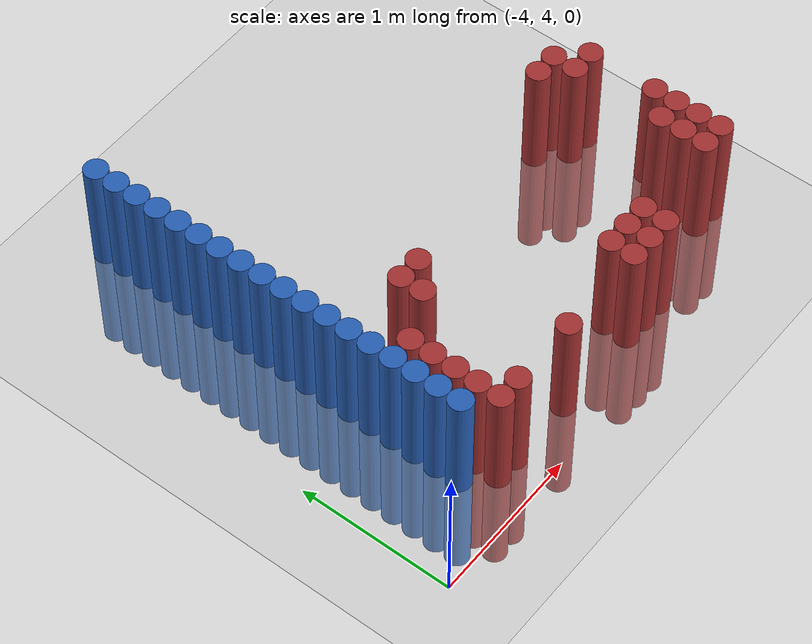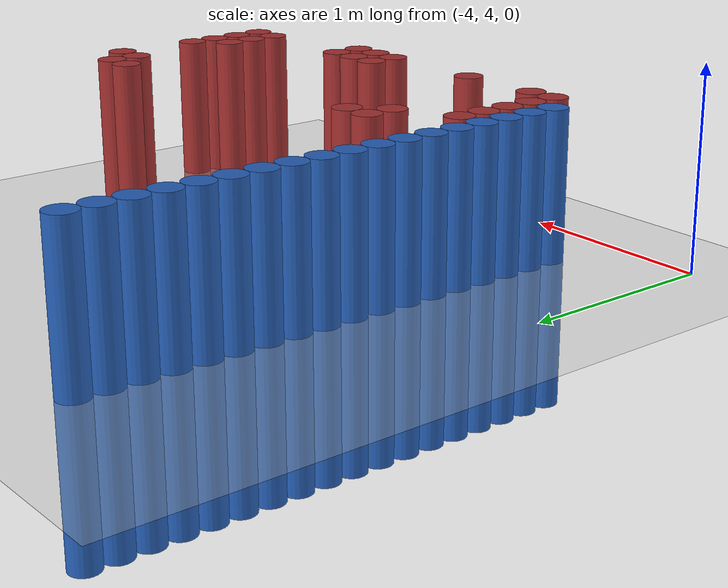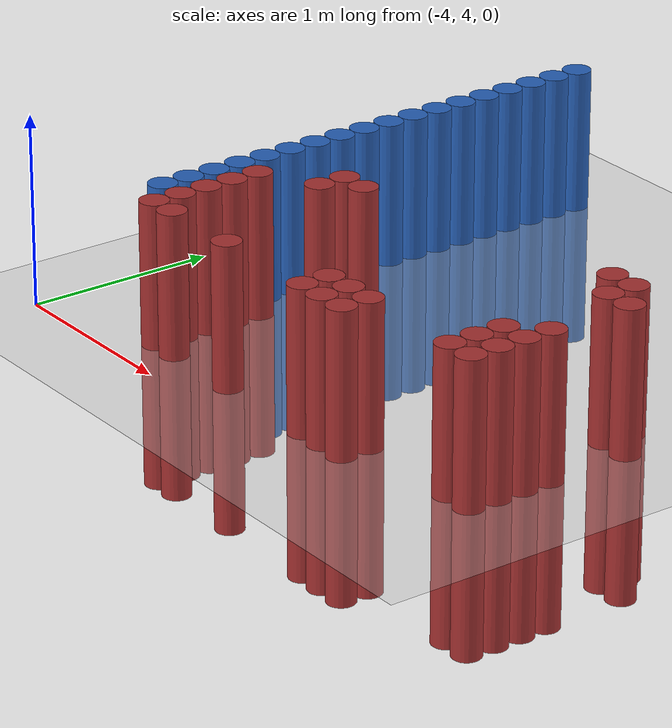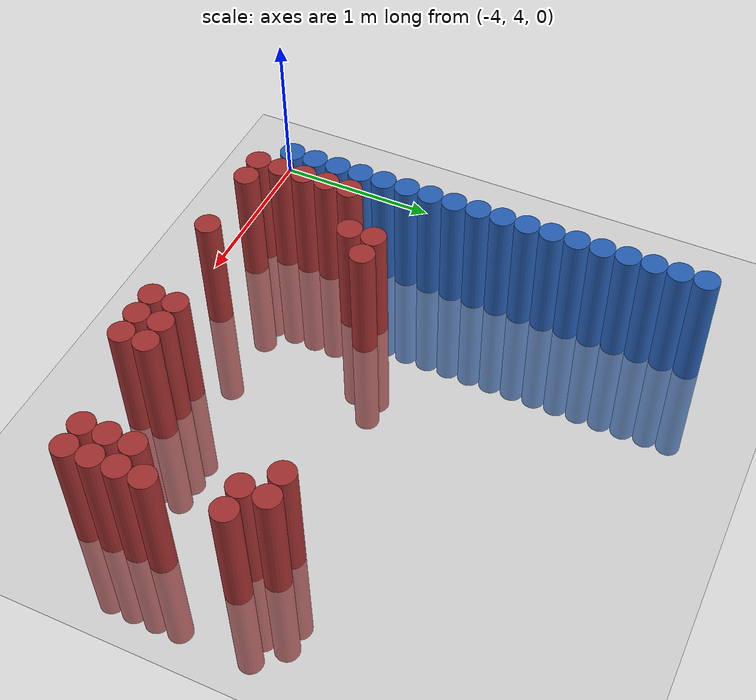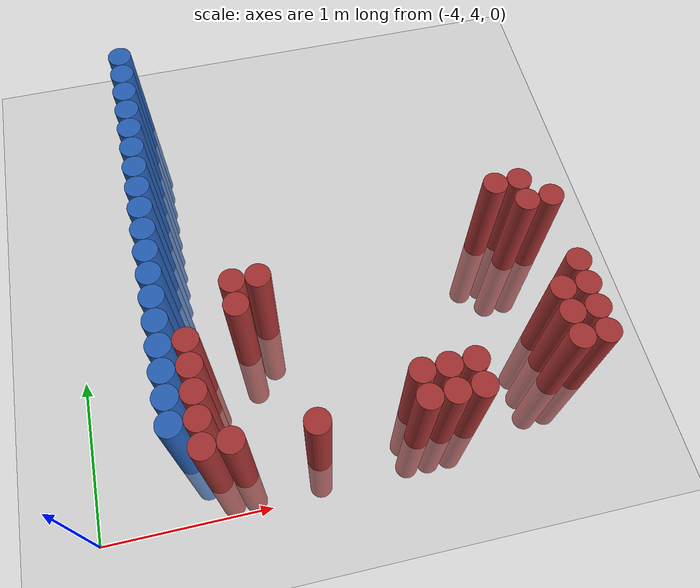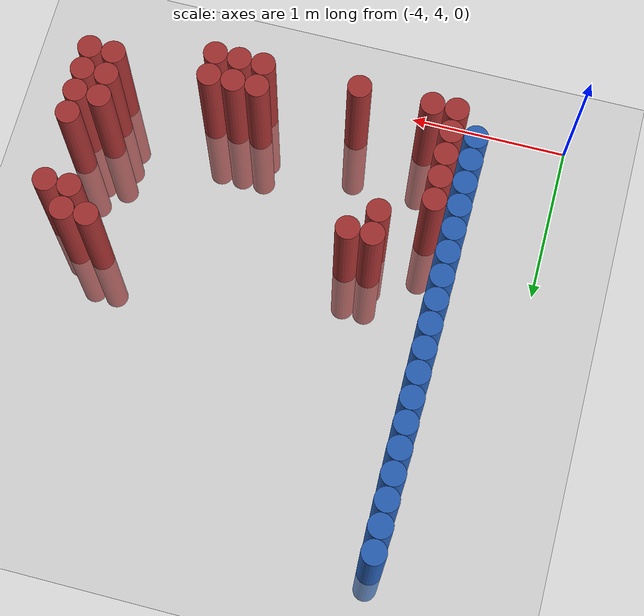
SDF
<sdf version="1.6">
 <world name="default">
  <model name="ground_plane">
   <static>1</static>
   <link name="link">
    <collision name="collision">
     <geometry><plane><normal>0 0 1</normal><size>100 100</size></plane></geometry>
     <surface><friction><ode><mu>100</mu><mu2>50</mu2></ode></friction></surface>
    </collision>
    <visual name="visual">
     <cast_shadows>0</cast_shadows>
     <geometry><plane><normal>0 0 1</normal><size>100 100</size></plane></geometry>
     <material>
      <script><uri>file://media/materials/scripts/gazebo.material</uri><name>Gazebo/Grey</name></script>
     </material>
    </visual>
   </link>
  </model>
  <model name="unit_cylinder_173">
   <static>1</static>
   <pose>-3.425000 4.375000 0.000000 0.000000 0.000000 0.000000</pose>
   <link name="link">
    <inertial>
     <mass>1</mass>
     <inertia><ixx>0.145833</ixx><ixy>0</ixy><ixz>0</ixz><iyy>0.145833</iyy><iyz>0</iyz><izz>0.125</izz></inertia>
    </inertial>
    <collision name="collision">
     <geometry><cylinder><radius>0.075000</radius><length>1.5</length></cylinder></geometry>
    </collision>
    <visual name="visual">
     <geometry><cylinder><radius>0.075000</radius><length>1.5</length></cylinder></geometry>
     <material>
      <ambient>0.152000 0.379000 0.720000 1</ambient>
      <diffuse>0.152000 0.379000 0.720000 1</diffuse>
     </material>
     <material>
      <script><name>Gazebo/Grey</name><uri>file://media/materials/scripts/gazebo.material</uri></script>
     </material>
    </visual>
   </link>
  </model>
  <model name="unit_cylinder_175">
   <static>1</static>
   <pose>-3.425000 4.525000 0.000000 0.000000 0.000000 0.000000</pose>
   <link name="link">
    <inertial>
     <mass>1</mass>
     <inertia><ixx>0.145833</ixx><ixy>0</ixy><ixz>0</ixz><iyy>0.145833</iyy><iyz>0</iyz><izz>0.125</izz></inertia>
    </inertial>
    <collision name="collision">
     <geometry><cylinder><radius>0.075000</radius><length>1.5</length></cylinder></geometry>
    </collision>
    <visual name="visual">
     <geometry><cylinder><radius>0.075000</radius><length>1.5</length></cylinder></geometry>
     <material>
      <ambient>0.152000 0.379000 0.720000 1</ambient>
      <diffuse>0.152000 0.379000 0.720000 1</diffuse>
     </material>
     <material>
      <script><name>Gazebo/Grey</name><uri>file://media/materials/scripts/gazebo.material</uri></script>
     </material>
    </visual>
   </link>
  </model>
  <model name="unit_cylinder_177">
   <static>1</static>
   <pose>-3.425000 4.675000 0.000000 0.000000 0.000000 0.000000</pose>
   <link name="link">
    <inertial>
     <mass>1</mass>
     <inertia><ixx>0.145833</ixx><ixy>0</ixy><ixz>0</ixz><iyy>0.145833</iyy><iyz>0</iyz><izz>0.125</izz></inertia>
    </inertial>
    <collision name="collision">
     <geometry><cylinder><radius>0.075000</radius><length>1.5</length></cylinder></geometry>
    </collision>
    <visual name="visual">
     <geometry><cylinder><radius>0.075000</radius><length>1.5</length></cylinder></geometry>
     <material>
      <ambient>0.152000 0.379000 0.720000 1</ambient>
      <diffuse>0.152000 0.379000 0.720000 1</diffuse>
     </material>
     <material>
      <script><name>Gazebo/Grey</name><uri>file://media/materials/scripts/gazebo.material</uri></script>
     </material>
    </visual>
   </link>
  </model>
  <model name="unit_cylinder_179">
   <static>1</static>
   <pose>-3.425000 4.825000 0.000000 0.000000 0.000000 0.000000</pose>
   <link name="link">
    <inertial>
     <mass>1</mass>
     <inertia><ixx>0.145833</ixx><ixy>0</ixy><ixz>0</ixz><iyy>0.145833</iyy><iyz>0</iyz><izz>0.125</izz></inertia>
    </inertial>
    <collision name="collision">
     <geometry><cylinder><radius>0.075000</radius><length>1.5</length></cylinder></geometry>
    </collision>
    <visual name="visual">
     <geometry><cylinder><radius>0.075000</radius><length>1.5</length></cylinder></geometry>
     <material>
      <ambient>0.152000 0.379000 0.720000 1</ambient>
      <diffuse>0.152000 0.379000 0.720000 1</diffuse>
     </material>
     <material>
      <script><name>Gazebo/Grey</name><uri>file://media/materials/scripts/gazebo.material</uri></script>
     </material>
    </visual>
   </link>
  </model>
  <model name="unit_cylinder_181">
   <static>1</static>
   <pose>-3.425000 4.975000 0.000000 0.000000 0.000000 0.000000</pose>
   <link name="link">
    <inertial>
     <mass>1</mass>
     <inertia><ixx>0.145833</ixx><ixy>0</ixy><ixz>0</ixz><iyy>0.145833</iyy><iyz>0</iyz><izz>0.125</izz></inertia>
    </inertial>
    <collision name="collision">
     <geometry><cylinder><radius>0.075000</radius><length>1.5</length></cylinder></geometry>
    </collision>
    <visual name="visual">
     <geometry><cylinder><radius>0.075000</radius><length>1.5</length></cylinder></geometry>
     <material>
      <ambient>0.152000 0.379000 0.720000 1</ambient>
      <diffuse>0.152000 0.379000 0.720000 1</diffuse>
     </material>
     <material>
      <script><name>Gazebo/Grey</name><uri>file://media/materials/scripts/gazebo.material</uri></script>
     </material>
    </visual>
   </link>
  </model>
  <model name="unit_cylinder_183">
   <static>1</static>
   <pose>-3.425000 5.125000 0.000000 0.000000 0.000000 0.000000</pose>
   <link name="link">
    <inertial>
     <mass>1</mass>
     <inertia><ixx>0.145833</ixx><ixy>0</ixy><ixz>0</ixz><iyy>0.145833</iyy><iyz>0</iyz><izz>0.125</izz></inertia>
    </inertial>
    <collision name="collision">
     <geometry><cylinder><radius>0.075000</radius><length>1.5</length></cylinder></geometry>
    </collision>
    <visual name="visual">
     <geometry><cylinder><radius>0.075000</radius><length>1.5</length></cylinder></geometry>
     <material>
      <ambient>0.152000 0.379000 0.720000 1</ambient>
      <diffuse>0.152000 0.379000 0.720000 1</diffuse>
     </material>
     <material>
      <script><name>Gazebo/Grey</name><uri>file://media/materials/scripts/gazebo.material</uri></script>
     </material>
    </visual>
   </link>
  </model>
  <model name="unit_cylinder_185">
   <static>1</static>
   <pose>-3.425000 5.275000 0.000000 0.000000 0.000000 0.000000</pose>
   <link name="link">
    <inertial>
     <mass>1</mass>
     <inertia><ixx>0.145833</ixx><ixy>0</ixy><ixz>0</ixz><iyy>0.145833</iyy><iyz>0</iyz><izz>0.125</izz></inertia>
    </inertial>
    <collision name="collision">
     <geometry><cylinder><radius>0.075000</radius><length>1.5</length></cylinder></geometry>
    </collision>
    <visual name="visual">
     <geometry><cylinder><radius>0.075000</radius><length>1.5</length></cylinder></geometry>
     <material>
      <ambient>0.152000 0.379000 0.720000 1</ambient>
      <diffuse>0.152000 0.379000 0.720000 1</diffuse>
     </material>
     <material>
      <script><name>Gazebo/Grey</name><uri>file://media/materials/scripts/gazebo.material</uri></script>
     </material>
    </visual>
   </link>
  </model>
  <model name="unit_cylinder_187">
   <static>1</static>
   <pose>-3.425000 5.425000 0.000000 0.000000 0.000000 0.000000</pose>
   <link name="link">
    <inertial>
     <mass>1</mass>
     <inertia><ixx>0.145833</ixx><ixy>0</ixy><ixz>0</ixz><iyy>0.145833</iyy><iyz>0</iyz><izz>0.125</izz></inertia>
    </inertial>
    <collision name="collision">
     <geometry><cylinder><radius>0.075000</radius><length>1.5</length></cylinder></geometry>
    </collision>
    <visual name="visual">
     <geometry><cylinder><radius>0.075000</radius><length>1.5</length></cylinder></geometry>
     <material>
      <ambient>0.152000 0.379000 0.720000 1</ambient>
      <diffuse>0.152000 0.379000 0.720000 1</diffuse>
     </material>
     <material>
      <script><name>Gazebo/Grey</name><uri>file://media/materials/scripts/gazebo.material</uri></script>
     </material>
    </visual>
   </link>
  </model>
  <model name="unit_cylinder_189">
   <static>1</static>
   <pose>-3.425000 5.575000 0.000000 0.000000 0.000000 0.000000</pose>
   <link name="link">
    <inertial>
     <mass>1</mass>
     <inertia><ixx>0.145833</ixx><ixy>0</ixy><ixz>0</ixz><iyy>0.145833</iyy><iyz>0</iyz><izz>0.125</izz></inertia>
    </inertial>
    <collision name="collision">
     <geometry><cylinder><radius>0.075000</radius><length>1.5</length></cylinder></geometry>
    </collision>
    <visual name="visual">
     <geometry><cylinder><radius>0.075000</radius><length>1.5</length></cylinder></geometry>
     <material>
      <ambient>0.152000 0.379000 0.720000 1</ambient>
      <diffuse>0.152000 0.379000 0.720000 1</diffuse>
     </material>
     <material>
      <script><name>Gazebo/Grey</name><uri>file://media/materials/scripts/gazebo.material</uri></script>
     </material>
    </visual>
   </link>
  </model>
  <model name="unit_cylinder_191">
   <static>1</static>
   <pose>-3.425000 5.725000 0.000000 0.000000 0.000000 0.000000</pose>
   <link name="link">
    <inertial>
     <mass>1</mass>
     <inertia><ixx>0.145833</ixx><ixy>0</ixy><ixz>0</ixz><iyy>0.145833</iyy><iyz>0</iyz><izz>0.125</izz></inertia>
    </inertial>
    <collision name="collision">
     <geometry><cylinder><radius>0.075000</radius><length>1.5</length></cylinder></geometry>
    </collision>
    <visual name="visual">
     <geometry><cylinder><radius>0.075000</radius><length>1.5</length></cylinder></geometry>
     <material>
      <ambient>0.152000 0.379000 0.720000 1</ambient>
      <diffuse>0.152000 0.379000 0.720000 1</diffuse>
     </material>
     <material>
      <script><name>Gazebo/Grey</name><uri>file://media/materials/scripts/gazebo.material</uri></script>
     </material>
    </visual>
   </link>
  </model>
  <model name="unit_cylinder_193">
   <static>1</static>
   <pose>-3.425000 5.875000 0.000000 0.000000 0.000000 0.000000</pose>
   <link name="link">
    <inertial>
     <mass>1</mass>
     <inertia><ixx>0.145833</ixx><ixy>0</ixy><ixz>0</ixz><iyy>0.145833</iyy><iyz>0</iyz><izz>0.125</izz></inertia>
    </inertial>
    <collision name="collision">
     <geometry><cylinder><radius>0.075000</radius><length>1.5</length></cylinder></geometry>
    </collision>
    <visual name="visual">
     <geometry><cylinder><radius>0.075000</radius><length>1.5</length></cylinder></geometry>
     <material>
      <ambient>0.152000 0.379000 0.720000 1</ambient>
      <diffuse>0.152000 0.379000 0.720000 1</diffuse>
     </material>
     <material>
      <script><name>Gazebo/Grey</name><uri>file://media/materials/scripts/gazebo.material</uri></script>
     </material>
    </visual>
   </link>
  </model>
  <model name="unit_cylinder_195">
   <static>1</static>
   <pose>-3.425000 6.025000 0.000000 0.000000 0.000000 0.000000</pose>
   <link name="link">
    <inertial>
     <mass>1</mass>
     <inertia><ixx>0.145833</ixx><ixy>0</ixy><ixz>0</ixz><iyy>0.145833</iyy><iyz>0</iyz><izz>0.125</izz></inertia>
    </inertial>
    <collision name="collision">
     <geometry><cylinder><radius>0.075000</radius><length>1.5</length></cylinder></geometry>
    </collision>
    <visual name="visual">
     <geometry><cylinder><radius>0.075000</radius><length>1.5</length></cylinder></geometry>
     <material>
      <ambient>0.152000 0.379000 0.720000 1</ambient>
      <diffuse>0.152000 0.379000 0.720000 1</diffuse>
     </material>
     <material>
      <script><name>Gazebo/Grey</name><uri>file://media/materials/scripts/gazebo.material</uri></script>
     </material>
    </visual>
   </link>
  </model>
  <model name="unit_cylinder_197">
   <static>1</static>
   <pose>-3.425000 6.175000 0.000000 0.000000 0.000000 0.000000</pose>
   <link name="link">
    <inertial>
     <mass>1</mass>
     <inertia><ixx>0.145833</ixx><ixy>0</ixy><ixz>0</ixz><iyy>0.145833</iyy><iyz>0</iyz><izz>0.125</izz></inertia>
    </inertial>
    <collision name="collision">
     <geometry><cylinder><radius>0.075000</radius><length>1.5</length></cylinder></geometry>
    </collision>
    <visual name="visual">
     <geometry><cylinder><radius>0.075000</radius><length>1.5</length></cylinder></geometry>
     <material>
      <ambient>0.152000 0.379000 0.720000 1</ambient>
      <diffuse>0.152000 0.379000 0.720000 1</diffuse>
     </material>
     <material>
      <script><name>Gazebo/Grey</name><uri>file://media/materials/scripts/gazebo.material</uri></script>
     </material>
    </visual>
   </link>
  </model>
  <model name="unit_cylinder_199">
   <static>1</static>
   <pose>-3.425000 6.325000 0.000000 0.000000 0.000000 0.000000</pose>
   <link name="link">
    <inertial>
     <mass>1</mass>
     <inertia><ixx>0.145833</ixx><ixy>0</ixy><ixz>0</ixz><iyy>0.145833</iyy><iyz>0</iyz><izz>0.125</izz></inertia>
    </inertial>
    <collision name="collision">
     <geometry><cylinder><radius>0.075000</radius><length>1.5</length></cylinder></geometry>
    </collision>
    <visual name="visual">
     <geometry><cylinder><radius>0.075000</radius><length>1.5</length></cylinder></geometry>
     <material>
      <ambient>0.152000 0.379000 0.720000 1</ambient>
      <diffuse>0.152000 0.379000 0.720000 1</diffuse>
     </material>
     <material>
      <script><name>Gazebo/Grey</name><uri>file://media/materials/scripts/gazebo.material</uri></script>
     </material>
    </visual>
   </link>
  </model>
  <model name="unit_cylinder_201">
   <static>1</static>
   <pose>-3.425000 6.475000 0.000000 0.000000 0.000000 0.000000</pose>
   <link name="link">
    <inertial>
     <mass>1</mass>
     <inertia><ixx>0.145833</ixx><ixy>0</ixy><ixz>0</ixz><iyy>0.145833</iyy><iyz>0</iyz><izz>0.125</izz></inertia>
    </inertial>
    <collision name="collision">
     <geometry><cylinder><radius>0.075000</radius><length>1.5</length></cylinder></geometry>
    </collision>
    <visual name="visual">
     <geometry><cylinder><radius>0.075000</radius><length>1.5</length></cylinder></geometry>
     <material>
      <ambient>0.152000 0.379000 0.720000 1</ambient>
      <diffuse>0.152000 0.379000 0.720000 1</diffuse>
     </material>
     <material>
      <script><name>Gazebo/Grey</name><uri>file://media/materials/scripts/gazebo.material</uri></script>
     </material>
    </visual>
   </link>
  </model>
  <model name="unit_cylinder_203">
   <static>1</static>
   <pose>-3.425000 6.625000 0.000000 0.000000 0.000000 0.000000</pose>
   <link name="link">
    <inertial>
     <mass>1</mass>
     <inertia><ixx>0.145833</ixx><ixy>0</ixy><ixz>0</ixz><iyy>0.145833</iyy><iyz>0</iyz><izz>0.125</izz></inertia>
    </inertial>
    <collision name="collision">
     <geometry><cylinder><radius>0.075000</radius><length>1.5</length></cylinder></geometry>
    </collision>
    <visual name="visual">
     <geometry><cylinder><radius>0.075000</radius><length>1.5</length></cylinder></geometry>
     <material>
      <ambient>0.152000 0.379000 0.720000 1</ambient>
      <diffuse>0.152000 0.379000 0.720000 1</diffuse>
     </material>
     <material>
      <script><name>Gazebo/Grey</name><uri>file://media/materials/scripts/gazebo.material</uri></script>
     </material>
    </visual>
   </link>
  </model>
  <model name="unit_cylinder_205">
   <static>1</static>
   <pose>-3.425000 6.775000 0.000000 0.000000 0.000000 0.000000</pose>
   <link name="link">
    <inertial>
     <mass>1</mass>
     <inertia><ixx>0.145833</ixx><ixy>0</ixy><ixz>0</ixz><iyy>0.145833</iyy><iyz>0</iyz><izz>0.125</izz></inertia>
    </inertial>
    <collision name="collision">
     <geometry><cylinder><radius>0.075000</radius><length>1.5</length></cylinder></geometry>
    </collision>
    <visual name="visual">
     <geometry><cylinder><radius>0.075000</radius><length>1.5</length></cylinder></geometry>
     <material>
      <ambient>0.152000 0.379000 0.720000 1</ambient>
      <diffuse>0.152000 0.379000 0.720000 1</diffuse>
     </material>
     <material>
      <script><name>Gazebo/Grey</name><uri>file://media/materials/scripts/gazebo.material</uri></script>
     </material>
    </visual>
   </link>
  </model>
  <model name="unit_cylinder_207">
   <static>1</static>
   <pose>-3.425000 6.925000 0.000000 0.000000 0.000000 0.000000</pose>
   <link name="link">
    <inertial>
     <mass>1</mass>
     <inertia><ixx>0.145833</ixx><ixy>0</ixy><ixz>0</ixz><iyy>0.145833</iyy><iyz>0</iyz><izz>0.125</izz></inertia>
    </inertial>
    <collision name="collision">
     <geometry><cylinder><radius>0.075000</radius><length>1.5</length></cylinder></geometry>
    </collision>
    <visual name="visual">
     <geometry><cylinder><radius>0.075000</radius><length>1.5</length></cylinder></geometry>
     <material>
      <ambient>0.152000 0.379000 0.720000 1</ambient>
      <diffuse>0.152000 0.379000 0.720000 1</diffuse>
     </material>
     <material>
      <script><name>Gazebo/Grey</name><uri>file://media/materials/scripts/gazebo.material</uri></script>
     </material>
    </visual>
   </link>
  </model>
  <model name="unit_cylinder_250">
   <static>1</static>
   <pose>-3.425000 4.375000 0.000000 0.000000 0.000000 0.000000</pose>
   <link name="link">
    <inertial>
     <mass>1</mass>
     <inertia><ixx>0.145833</ixx><ixy>0</ixy><ixz>0</ixz><iyy>0.145833</iyy><iyz>0</iyz><izz>0.125</izz></inertia>
    </inertial>
    <collision name="collision">
     <geometry><cylinder><radius>0.075000</radius><length>1.5</length></cylinder></geometry>
    </collision>
    <visual name="visual">
     <geometry><cylinder><radius>0.075000</radius><length>1.5</length></cylinder></geometry>
     <material>
      <ambient>0.152000 0.379000 0.720000 1</ambient>
      <diffuse>0.152000 0.379000 0.720000 1</diffuse>
     </material>
     <material>
      <script><name>Gazebo/Grey</name><uri>file://media/materials/scripts/gazebo.material</uri></script>
     </material>
    </visual>
   </link>
  </model>
  <model name="unit_cylinder_251">
   <static>1</static>
   <pose>-3.425000 4.525000 0.000000 0.000000 0.000000 0.000000</pose>
   <link name="link">
    <inertial>
     <mass>1</mass>
     <inertia><ixx>0.145833</ixx><ixy>0</ixy><ixz>0</ixz><iyy>0.145833</iyy><iyz>0</iyz><izz>0.125</izz></inertia>
    </inertial>
    <collision name="collision">
     <geometry><cylinder><radius>0.075000</radius><length>1.5</length></cylinder></geometry>
    </collision>
    <visual name="visual">
     <geometry><cylinder><radius>0.075000</radius><length>1.5</length></cylinder></geometry>
     <material>
      <ambient>0.152000 0.379000 0.720000 1</ambient>
      <diffuse>0.152000 0.379000 0.720000 1</diffuse>
     </material>
     <material>
      <script><name>Gazebo/Grey</name><uri>file://media/materials/scripts/gazebo.material</uri></script>
     </material>
    </visual>
   </link>
  </model>
  <model name="unit_cylinder_252">
   <static>1</static>
   <pose>-3.425000 4.675000 0.000000 0.000000 0.000000 0.000000</pose>
   <link name="link">
    <inertial>
     <mass>1</mass>
     <inertia><ixx>0.145833</ixx><ixy>0</ixy><ixz>0</ixz><iyy>0.145833</iyy><iyz>0</iyz><izz>0.125</izz></inertia>
    </inertial>
    <collision name="collision">
     <geometry><cylinder><radius>0.075000</radius><length>1.5</length></cylinder></geometry>
    </collision>
    <visual name="visual">
     <geometry><cylinder><radius>0.075000</radius><length>1.5</length></cylinder></geometry>
     <material>
      <ambient>0.152000 0.379000 0.720000 1</ambient>
      <diffuse>0.152000 0.379000 0.720000 1</diffuse>
     </material>
     <material>
      <script><name>Gazebo/Grey</name><uri>file://media/materials/scripts/gazebo.material</uri></script>
     </material>
    </visual>
   </link>
  </model>
  <model name="unit_cylinder_253">
   <static>1</static>
   <pose>-3.425000 4.825000 0.000000 0.000000 0.000000 0.000000</pose>
   <link name="link">
    <inertial>
     <mass>1</mass>
     <inertia><ixx>0.145833</ixx><ixy>0</ixy><ixz>0</ixz><iyy>0.145833</iyy><iyz>0</iyz><izz>0.125</izz></inertia>
    </inertial>
    <collision name="collision">
     <geometry><cylinder><radius>0.075000</radius><length>1.5</length></cylinder></geometry>
    </collision>
    <visual name="visual">
     <geometry><cylinder><radius>0.075000</radius><length>1.5</length></cylinder></geometry>
     <material>
      <ambient>0.152000 0.379000 0.720000 1</ambient>
      <diffuse>0.152000 0.379000 0.720000 1</diffuse>
     </material>
     <material>
      <script><name>Gazebo/Grey</name><uri>file://media/materials/scripts/gazebo.material</uri></script>
     </material>
    </visual>
   </link>
  </model>
  <model name="unit_cylinder_254">
   <static>1</static>
   <pose>-3.425000 4.975000 0.000000 0.000000 0.000000 0.000000</pose>
   <link name="link">
    <inertial>
     <mass>1</mass>
     <inertia><ixx>0.145833</ixx><ixy>0</ixy><ixz>0</ixz><iyy>0.145833</iyy><iyz>0</iyz><izz>0.125</izz></inertia>
    </inertial>
    <collision name="collision">
     <geometry><cylinder><radius>0.075000</radius><length>1.5</length></cylinder></geometry>
    </collision>
    <visual name="visual">
     <geometry><cylinder><radius>0.075000</radius><length>1.5</length></cylinder></geometry>
     <material>
      <ambient>0.152000 0.379000 0.720000 1</ambient>
      <diffuse>0.152000 0.379000 0.720000 1</diffuse>
     </material>
     <material>
      <script><name>Gazebo/Grey</name><uri>file://media/materials/scripts/gazebo.material</uri></script>
     </material>
    </visual>
   </link>
  </model>
  <model name="unit_cylinder_255">
   <static>1</static>
   <pose>-3.425000 5.125000 0.000000 0.000000 0.000000 0.000000</pose>
   <link name="link">
    <inertial>
     <mass>1</mass>
     <inertia><ixx>0.145833</ixx><ixy>0</ixy><ixz>0</ixz><iyy>0.145833</iyy><iyz>0</iyz><izz>0.125</izz></inertia>
    </inertial>
    <collision name="collision">
     <geometry><cylinder><radius>0.075000</radius><length>1.5</length></cylinder></geometry>
    </collision>
    <visual name="visual">
     <geometry><cylinder><radius>0.075000</radius><length>1.5</length></cylinder></geometry>
     <material>
      <ambient>0.152000 0.379000 0.720000 1</ambient>
      <diffuse>0.152000 0.379000 0.720000 1</diffuse>
     </material>
     <material>
      <script><name>Gazebo/Grey</name><uri>file://media/materials/scripts/gazebo.material</uri></script>
     </material>
    </visual>
   </link>
  </model>
  <model name="unit_cylinder_256">
   <static>1</static>
   <pose>-3.425000 5.275000 0.000000 0.000000 0.000000 0.000000</pose>
   <link name="link">
    <inertial>
     <mass>1</mass>
     <inertia><ixx>0.145833</ixx><ixy>0</ixy><ixz>0</ixz><iyy>0.145833</iyy><iyz>0</iyz><izz>0.125</izz></inertia>
    </inertial>
    <collision name="collision">
     <geometry><cylinder><radius>0.075000</radius><length>1.5</length></cylinder></geometry>
    </collision>
    <visual name="visual">
     <geometry><cylinder><radius>0.075000</radius><length>1.5</length></cylinder></geometry>
     <material>
      <ambient>0.152000 0.379000 0.720000 1</ambient>
      <diffuse>0.152000 0.379000 0.720000 1</diffuse>
     </material>
     <material>
      <script><name>Gazebo/Grey</name><uri>file://media/materials/scripts/gazebo.material</uri></script>
     </material>
    </visual>
   </link>
  </model>
  <model name="unit_cylinder_257">
   <static>1</static>
   <pose>-3.425000 5.425000 0.000000 0.000000 0.000000 0.000000</pose>
   <link name="link">
    <inertial>
     <mass>1</mass>
     <inertia><ixx>0.145833</ixx><ixy>0</ixy><ixz>0</ixz><iyy>0.145833</iyy><iyz>0</iyz><izz>0.125</izz></inertia>
    </inertial>
    <collision name="collision">
     <geometry><cylinder><radius>0.075000</radius><length>1.5</length></cylinder></geometry>
    </collision>
    <visual name="visual">
     <geometry><cylinder><radius>0.075000</radius><length>1.5</length></cylinder></geometry>
     <material>
      <ambient>0.152000 0.379000 0.720000 1</ambient>
      <diffuse>0.152000 0.379000 0.720000 1</diffuse>
     </material>
     <material>
      <script><name>Gazebo/Grey</name><uri>file://media/materials/scripts/gazebo.material</uri></script>
     </material>
    </visual>
   </link>
  </model>
  <model name="unit_cylinder_280">
   <static>1</static>
   <pose>-3.275000 4.225000 0.000000 0.000000 0.000000 0.000000</pose>
   <link name="link">
    <inertial>
     <mass>1</mass>
     <inertia><ixx>0.145833</ixx><ixy>0</ixy><ixz>0</ixz><iyy>0.145833</iyy><iyz>0</iyz><izz>0.125</izz></inertia>
    </inertial>
    <collision name="collision">
     <geometry><cylinder><radius>0.075000</radius><length>1.5</length></cylinder></geometry>
    </collision>
    <visual name="visual">
     <geometry><cylinder><radius>0.075000</radius><length>1.5</length></cylinder></geometry>
     <material>
      <ambient>0.648000 0.192000 0.192000 1</ambient>
      <diffuse>0.648000 0.192000 0.192000 1</diffuse>
     </material>
     <material>
      <script><name>Gazebo/Grey</name><uri>file://media/materials/scripts/gazebo.material</uri></script>
     </material>
    </visual>
   </link>
  </model>
  <model name="unit_cylinder_281">
   <static>1</static>
   <pose>-3.275000 4.375000 0.000000 0.000000 0.000000 0.000000</pose>
   <link name="link">
    <inertial>
     <mass>1</mass>
     <inertia><ixx>0.145833</ixx><ixy>0</ixy><ixz>0</ixz><iyy>0.145833</iyy><iyz>0</iyz><izz>0.125</izz></inertia>
    </inertial>
    <collision name="collision">
     <geometry><cylinder><radius>0.075000</radius><length>1.5</length></cylinder></geometry>
    </collision>
    <visual name="visual">
     <geometry><cylinder><radius>0.075000</radius><length>1.5</length></cylinder></geometry>
     <material>
      <ambient>0.648000 0.192000 0.192000 1</ambient>
      <diffuse>0.648000 0.192000 0.192000 1</diffuse>
     </material>
     <material>
      <script><name>Gazebo/Grey</name><uri>file://media/materials/scripts/gazebo.material</uri></script>
     </material>
    </visual>
   </link>
  </model>
  <model name="unit_cylinder_282">
   <static>1</static>
   <pose>-3.275000 4.525000 0.000000 0.000000 0.000000 0.000000</pose>
   <link name="link">
    <inertial>
     <mass>1</mass>
     <inertia><ixx>0.145833</ixx><ixy>0</ixy><ixz>0</ixz><iyy>0.145833</iyy><iyz>0</iyz><izz>0.125</izz></inertia>
    </inertial>
    <collision name="collision">
     <geometry><cylinder><radius>0.075000</radius><length>1.5</length></cylinder></geometry>
    </collision>
    <visual name="visual">
     <geometry><cylinder><radius>0.075000</radius><length>1.5</length></cylinder></geometry>
     <material>
      <ambient>0.648000 0.192000 0.192000 1</ambient>
      <diffuse>0.648000 0.192000 0.192000 1</diffuse>
     </material>
     <material>
      <script><name>Gazebo/Grey</name><uri>file://media/materials/scripts/gazebo.material</uri></script>
     </material>
    </visual>
   </link>
  </model>
  <model name="unit_cylinder_283">
   <static>1</static>
   <pose>-3.275000 4.675000 0.000000 0.000000 0.000000 0.000000</pose>
   <link name="link">
    <inertial>
     <mass>1</mass>
     <inertia><ixx>0.145833</ixx><ixy>0</ixy><ixz>0</ixz><iyy>0.145833</iyy><iyz>0</iyz><izz>0.125</izz></inertia>
    </inertial>
    <collision name="collision">
     <geometry><cylinder><radius>0.075000</radius><length>1.5</length></cylinder></geometry>
    </collision>
    <visual name="visual">
     <geometry><cylinder><radius>0.075000</radius><length>1.5</length></cylinder></geometry>
     <material>
      <ambient>0.648000 0.192000 0.192000 1</ambient>
      <diffuse>0.648000 0.192000 0.192000 1</diffuse>
     </material>
     <material>
      <script><name>Gazebo/Grey</name><uri>file://media/materials/scripts/gazebo.material</uri></script>
     </material>
    </visual>
   </link>
  </model>
  <model name="unit_cylinder_284">
   <static>1</static>
   <pose>-3.275000 4.825000 0.000000 0.000000 0.000000 0.000000</pose>
   <link name="link">
    <inertial>
     <mass>1</mass>
     <inertia><ixx>0.145833</ixx><ixy>0</ixy><ixz>0</ixz><iyy>0.145833</iyy><iyz>0</iyz><izz>0.125</izz></inertia>
    </inertial>
    <collision name="collision">
     <geometry><cylinder><radius>0.075000</radius><length>1.5</length></cylinder></geometry>
    </collision>
    <visual name="visual">
     <geometry><cylinder><radius>0.075000</radius><length>1.5</length></cylinder></geometry>
     <material>
      <ambient>0.648000 0.192000 0.192000 1</ambient>
      <diffuse>0.648000 0.192000 0.192000 1</diffuse>
     </material>
     <material>
      <script><name>Gazebo/Grey</name><uri>file://media/materials/scripts/gazebo.material</uri></script>
     </material>
    </visual>
   </link>
  </model>
  <model name="unit_cylinder_298">
   <static>1</static>
   <pose>-3.125000 4.225000 0.000000 0.000000 0.000000 0.000000</pose>
   <link name="link">
    <inertial>
     <mass>1</mass>
     <inertia><ixx>0.145833</ixx><ixy>0</ixy><ixz>0</ixz><iyy>0.145833</iyy><iyz>0</iyz><izz>0.125</izz></inertia>
    </inertial>
    <collision name="collision">
     <geometry><cylinder><radius>0.075000</radius><length>1.5</length></cylinder></geometry>
    </collision>
    <visual name="visual">
     <geometry><cylinder><radius>0.075000</radius><length>1.5</length></cylinder></geometry>
     <material>
      <ambient>0.648000 0.192000 0.192000 1</ambient>
      <diffuse>0.648000 0.192000 0.192000 1</diffuse>
     </material>
     <material>
      <script><name>Gazebo/Grey</name><uri>file://media/materials/scripts/gazebo.material</uri></script>
     </material>
    </visual>
   </link>
  </model>
  <model name="unit_cylinder_307">
   <static>1</static>
   <pose>-2.975000 4.975000 0.000000 0.000000 0.000000 0.000000</pose>
   <link name="link">
    <inertial>
     <mass>1</mass>
     <inertia><ixx>0.145833</ixx><ixy>0</ixy><ixz>0</ixz><iyy>0.145833</iyy><iyz>0</iyz><izz>0.125</izz></inertia>
    </inertial>
    <collision name="collision">
     <geometry><cylinder><radius>0.075000</radius><length>1.5</length></cylinder></geometry>
    </collision>
    <visual name="visual">
     <geometry><cylinder><radius>0.075000</radius><length>1.5</length></cylinder></geometry>
     <material>
      <ambient>0.648000 0.192000 0.192000 1</ambient>
      <diffuse>0.648000 0.192000 0.192000 1</diffuse>
     </material>
     <material>
      <script><name>Gazebo/Grey</name><uri>file://media/materials/scripts/gazebo.material</uri></script>
     </material>
    </visual>
   </link>
  </model>
  <model name="unit_cylinder_308">
   <static>1</static>
   <pose>-2.975000 5.125000 0.000000 0.000000 0.000000 0.000000</pose>
   <link name="link">
    <inertial>
     <mass>1</mass>
     <inertia><ixx>0.145833</ixx><ixy>0</ixy><ixz>0</ixz><iyy>0.145833</iyy><iyz>0</iyz><izz>0.125</izz></inertia>
    </inertial>
    <collision name="collision">
     <geometry><cylinder><radius>0.075000</radius><length>1.5</length></cylinder></geometry>
    </collision>
    <visual name="visual">
     <geometry><cylinder><radius>0.075000</radius><length>1.5</length></cylinder></geometry>
     <material>
      <ambient>0.648000 0.192000 0.192000 1</ambient>
      <diffuse>0.648000 0.192000 0.192000 1</diffuse>
     </material>
     <material>
      <script><name>Gazebo/Grey</name><uri>file://media/materials/scripts/gazebo.material</uri></script>
     </material>
    </visual>
   </link>
  </model>
  <model name="unit_cylinder_317">
   <static>1</static>
   <pose>-2.825000 5.125000 0.000000 0.000000 0.000000 0.000000</pose>
   <link name="link">
    <inertial>
     <mass>1</mass>
     <inertia><ixx>0.145833</ixx><ixy>0</ixy><ixz>0</ixz><iyy>0.145833</iyy><iyz>0</iyz><izz>0.125</izz></inertia>
    </inertial>
    <collision name="collision">
     <geometry><cylinder><radius>0.075000</radius><length>1.5</length></cylinder></geometry>
    </collision>
    <visual name="visual">
     <geometry><cylinder><radius>0.075000</radius><length>1.5</length></cylinder></geometry>
     <material>
      <ambient>0.648000 0.192000 0.192000 1</ambient>
      <diffuse>0.648000 0.192000 0.192000 1</diffuse>
     </material>
     <material>
      <script><name>Gazebo/Grey</name><uri>file://media/materials/scripts/gazebo.material</uri></script>
     </material>
    </visual>
   </link>
  </model>
  <model name="unit_cylinder_324">
   <static>1</static>
   <pose>-2.675000 4.225000 0.000000 0.000000 0.000000 0.000000</pose>
   <link name="link">
    <inertial>
     <mass>1</mass>
     <inertia><ixx>0.145833</ixx><ixy>0</ixy><ixz>0</ixz><iyy>0.145833</iyy><iyz>0</iyz><izz>0.125</izz></inertia>
    </inertial>
    <collision name="collision">
     <geometry><cylinder><radius>0.075000</radius><length>1.5</length></cylinder></geometry>
    </collision>
    <visual name="visual">
     <geometry><cylinder><radius>0.075000</radius><length>1.5</length></cylinder></geometry>
     <material>
      <ambient>0.648000 0.192000 0.192000 1</ambient>
      <diffuse>0.648000 0.192000 0.192000 1</diffuse>
     </material>
     <material>
      <script><name>Gazebo/Grey</name><uri>file://media/materials/scripts/gazebo.material</uri></script>
     </material>
    </visual>
   </link>
  </model>
  <model name="unit_cylinder_348">
   <static>1</static>
   <pose>-2.075000 4.225000 0.000000 0.000000 0.000000 0.000000</pose>
   <link name="link">
    <inertial>
     <mass>1</mass>
     <inertia><ixx>0.145833</ixx><ixy>0</ixy><ixz>0</ixz><iyy>0.145833</iyy><iyz>0</iyz><izz>0.125</izz></inertia>
    </inertial>
    <collision name="collision">
     <geometry><cylinder><radius>0.075000</radius><length>1.5</length></cylinder></geometry>
    </collision>
    <visual name="visual">
     <geometry><cylinder><radius>0.075000</radius><length>1.5</length></cylinder></geometry>
     <material>
      <ambient>0.648000 0.192000 0.192000 1</ambient>
      <diffuse>0.648000 0.192000 0.192000 1</diffuse>
     </material>
     <material>
      <script><name>Gazebo/Grey</name><uri>file://media/materials/scripts/gazebo.material</uri></script>
     </material>
    </visual>
   </link>
  </model>
  <model name="unit_cylinder_349">
   <static>1</static>
   <pose>-2.075000 4.375000 0.000000 0.000000 0.000000 0.000000</pose>
   <link name="link">
    <inertial>
     <mass>1</mass>
     <inertia><ixx>0.145833</ixx><ixy>0</ixy><ixz>0</ixz><iyy>0.145833</iyy><iyz>0</iyz><izz>0.125</izz></inertia>
    </inertial>
    <collision name="collision">
     <geometry><cylinder><radius>0.075000</radius><length>1.5</length></cylinder></geometry>
    </collision>
    <visual name="visual">
     <geometry><cylinder><radius>0.075000</radius><length>1.5</length></cylinder></geometry>
     <material>
      <ambient>0.648000 0.192000 0.192000 1</ambient>
      <diffuse>0.648000 0.192000 0.192000 1</diffuse>
     </material>
     <material>
      <script><name>Gazebo/Grey</name><uri>file://media/materials/scripts/gazebo.material</uri></script>
     </material>
    </visual>
   </link>
  </model>
  <model name="unit_cylinder_356">
   <static>1</static>
   <pose>-1.925000 4.225000 0.000000 0.000000 0.000000 0.000000</pose>
   <link name="link">
    <inertial>
     <mass>1</mass>
     <inertia><ixx>0.145833</ixx><ixy>0</ixy><ixz>0</ixz><iyy>0.145833</iyy><iyz>0</iyz><izz>0.125</izz></inertia>
    </inertial>
    <collision name="collision">
     <geometry><cylinder><radius>0.075000</radius><length>1.5</length></cylinder></geometry>
    </collision>
    <visual name="visual">
     <geometry><cylinder><radius>0.075000</radius><length>1.5</length></cylinder></geometry>
     <material>
      <ambient>0.648000 0.192000 0.192000 1</ambient>
      <diffuse>0.648000 0.192000 0.192000 1</diffuse>
     </material>
     <material>
      <script><name>Gazebo/Grey</name><uri>file://media/materials/scripts/gazebo.material</uri></script>
     </material>
    </visual>
   </link>
  </model>
  <model name="unit_cylinder_357">
   <static>1</static>
   <pose>-1.925000 4.375000 0.000000 0.000000 0.000000 0.000000</pose>
   <link name="link">
    <inertial>
     <mass>1</mass>
     <inertia><ixx>0.145833</ixx><ixy>0</ixy><ixz>0</ixz><iyy>0.145833</iyy><iyz>0</iyz><izz>0.125</izz></inertia>
    </inertial>
    <collision name="collision">
     <geometry><cylinder><radius>0.075000</radius><length>1.5</length></cylinder></geometry>
    </collision>
    <visual name="visual">
     <geometry><cylinder><radius>0.075000</radius><length>1.5</length></cylinder></geometry>
     <material>
      <ambient>0.648000 0.192000 0.192000 1</ambient>
      <diffuse>0.648000 0.192000 0.192000 1</diffuse>
     </material>
     <material>
      <script><name>Gazebo/Grey</name><uri>file://media/materials/scripts/gazebo.material</uri></script>
     </material>
    </visual>
   </link>
  </model>
  <model name="unit_cylinder_363">
   <static>1</static>
   <pose>-1.775000 4.225000 0.000000 0.000000 0.000000 0.000000</pose>
   <link name="link">
    <inertial>
     <mass>1</mass>
     <inertia><ixx>0.145833</ixx><ixy>0</ixy><ixz>0</ixz><iyy>0.145833</iyy><iyz>0</iyz><izz>0.125</izz></inertia>
    </inertial>
    <collision name="collision">
     <geometry><cylinder><radius>0.075000</radius><length>1.5</length></cylinder></geometry>
    </collision>
    <visual name="visual">
     <geometry><cylinder><radius>0.075000</radius><length>1.5</length></cylinder></geometry>
     <material>
      <ambient>0.648000 0.192000 0.192000 1</ambient>
      <diffuse>0.648000 0.192000 0.192000 1</diffuse>
     </material>
     <material>
      <script><name>Gazebo/Grey</name><uri>file://media/materials/scripts/gazebo.material</uri></script>
     </material>
    </visual>
   </link>
  </model>
  <model name="unit_cylinder_364">
   <static>1</static>
   <pose>-1.775000 4.375000 0.000000 0.000000 0.000000 0.000000</pose>
   <link name="link">
    <inertial>
     <mass>1</mass>
     <inertia><ixx>0.145833</ixx><ixy>0</ixy><ixz>0</ixz><iyy>0.145833</iyy><iyz>0</iyz><izz>0.125</izz></inertia>
    </inertial>
    <collision name="collision">
     <geometry><cylinder><radius>0.075000</radius><length>1.5</length></cylinder></geometry>
    </collision>
    <visual name="visual">
     <geometry><cylinder><radius>0.075000</radius><length>1.5</length></cylinder></geometry>
     <material>
      <ambient>0.648000 0.192000 0.192000 1</ambient>
      <diffuse>0.648000 0.192000 0.192000 1</diffuse>
     </material>
     <material>
      <script><name>Gazebo/Grey</name><uri>file://media/materials/scripts/gazebo.material</uri></script>
     </material>
    </visual>
   </link>
  </model>
  <model name="unit_cylinder_388">
   <static>1</static>
   <pose>-1.325000 5.425000 0.000000 0.000000 0.000000 0.000000</pose>
   <link name="link">
    <inertial>
     <mass>1</mass>
     <inertia><ixx>0.145833</ixx><ixy>0</ixy><ixz>0</ixz><iyy>0.145833</iyy><iyz>0</iyz><izz>0.125</izz></inertia>
    </inertial>
    <collision name="collision">
     <geometry><cylinder><radius>0.075000</radius><length>1.5</length></cylinder></geometry>
    </collision>
    <visual name="visual">
     <geometry><cylinder><radius>0.075000</radius><length>1.5</length></cylinder></geometry>
     <material>
      <ambient>0.648000 0.192000 0.192000 1</ambient>
      <diffuse>0.648000 0.192000 0.192000 1</diffuse>
     </material>
     <material>
      <script><name>Gazebo/Grey</name><uri>file://media/materials/scripts/gazebo.material</uri></script>
     </material>
    </visual>
   </link>
  </model>
  <model name="unit_cylinder_403">
   <static>1</static>
   <pose>-1.175000 4.375000 0.000000 0.000000 0.000000 0.000000</pose>
   <link name="link">
    <inertial>
     <mass>1</mass>
     <inertia><ixx>0.145833</ixx><ixy>0</ixy><ixz>0</ixz><iyy>0.145833</iyy><iyz>0</iyz><izz>0.125</izz></inertia>
    </inertial>
    <collision name="collision">
     <geometry><cylinder><radius>0.075000</radius><length>1.5</length></cylinder></geometry>
    </collision>
    <visual name="visual">
     <geometry><cylinder><radius>0.075000</radius><length>1.5</length></cylinder></geometry>
     <material>
      <ambient>0.648000 0.192000 0.192000 1</ambient>
      <diffuse>0.648000 0.192000 0.192000 1</diffuse>
     </material>
     <material>
      <script><name>Gazebo/Grey</name><uri>file://media/materials/scripts/gazebo.material</uri></script>
     </material>
    </visual>
   </link>
  </model>
  <model name="unit_cylinder_404">
   <static>1</static>
   <pose>-1.175000 4.525000 0.000000 0.000000 0.000000 0.000000</pose>
   <link name="link">
    <inertial>
     <mass>1</mass>
     <inertia><ixx>0.145833</ixx><ixy>0</ixy><ixz>0</ixz><iyy>0.145833</iyy><iyz>0</iyz><izz>0.125</izz></inertia>
    </inertial>
    <collision name="collision">
     <geometry><cylinder><radius>0.075000</radius><length>1.5</length></cylinder></geometry>
    </collision>
    <visual name="visual">
     <geometry><cylinder><radius>0.075000</radius><length>1.5</length></cylinder></geometry>
     <material>
      <ambient>0.648000 0.192000 0.192000 1</ambient>
      <diffuse>0.648000 0.192000 0.192000 1</diffuse>
     </material>
     <material>
      <script><name>Gazebo/Grey</name><uri>file://media/materials/scripts/gazebo.material</uri></script>
     </material>
    </visual>
   </link>
  </model>
  <model name="unit_cylinder_405">
   <static>1</static>
   <pose>-1.175000 4.675000 0.000000 0.000000 0.000000 0.000000</pose>
   <link name="link">
    <inertial>
     <mass>1</mass>
     <inertia><ixx>0.145833</ixx><ixy>0</ixy><ixz>0</ixz><iyy>0.145833</iyy><iyz>0</iyz><izz>0.125</izz></inertia>
    </inertial>
    <collision name="collision">
     <geometry><cylinder><radius>0.075000</radius><length>1.5</length></cylinder></geometry>
    </collision>
    <visual name="visual">
     <geometry><cylinder><radius>0.075000</radius><length>1.5</length></cylinder></geometry>
     <material>
      <ambient>0.648000 0.192000 0.192000 1</ambient>
      <diffuse>0.648000 0.192000 0.192000 1</diffuse>
     </material>
     <material>
      <script><name>Gazebo/Grey</name><uri>file://media/materials/scripts/gazebo.material</uri></script>
     </material>
    </visual>
   </link>
  </model>
  <model name="unit_cylinder_406">
   <static>1</static>
   <pose>-1.175000 5.275000 0.000000 0.000000 0.000000 0.000000</pose>
   <link name="link">
    <inertial>
     <mass>1</mass>
     <inertia><ixx>0.145833</ixx><ixy>0</ixy><ixz>0</ixz><iyy>0.145833</iyy><iyz>0</iyz><izz>0.125</izz></inertia>
    </inertial>
    <collision name="collision">
     <geometry><cylinder><radius>0.075000</radius><length>1.5</length></cylinder></geometry>
    </collision>
    <visual name="visual">
     <geometry><cylinder><radius>0.075000</radius><length>1.5</length></cylinder></geometry>
     <material>
      <ambient>0.648000 0.192000 0.192000 1</ambient>
      <diffuse>0.648000 0.192000 0.192000 1</diffuse>
     </material>
     <material>
      <script><name>Gazebo/Grey</name><uri>file://media/materials/scripts/gazebo.material</uri></script>
     </material>
    </visual>
   </link>
  </model>
  <model name="unit_cylinder_407">
   <static>1</static>
   <pose>-1.175000 5.425000 0.000000 0.000000 0.000000 0.000000</pose>
   <link name="link">
    <inertial>
     <mass>1</mass>
     <inertia><ixx>0.145833</ixx><ixy>0</ixy><ixz>0</ixz><iyy>0.145833</iyy><iyz>0</iyz><izz>0.125</izz></inertia>
    </inertial>
    <collision name="collision">
     <geometry><cylinder><radius>0.075000</radius><length>1.5</length></cylinder></geometry>
    </collision>
    <visual name="visual">
     <geometry><cylinder><radius>0.075000</radius><length>1.5</length></cylinder></geometry>
     <material>
      <ambient>0.648000 0.192000 0.192000 1</ambient>
      <diffuse>0.648000 0.192000 0.192000 1</diffuse>
     </material>
     <material>
      <script><name>Gazebo/Grey</name><uri>file://media/materials/scripts/gazebo.material</uri></script>
     </material>
    </visual>
   </link>
  </model>
  <model name="unit_cylinder_413">
   <static>1</static>
   <pose>-1.025000 4.375000 0.000000 0.000000 0.000000 0.000000</pose>
   <link name="link">
    <inertial>
     <mass>1</mass>
     <inertia><ixx>0.145833</ixx><ixy>0</ixy><ixz>0</ixz><iyy>0.145833</iyy><iyz>0</iyz><izz>0.125</izz></inertia>
    </inertial>
    <collision name="collision">
     <geometry><cylinder><radius>0.075000</radius><length>1.5</length></cylinder></geometry>
    </collision>
    <visual name="visual">
     <geometry><cylinder><radius>0.075000</radius><length>1.5</length></cylinder></geometry>
     <material>
      <ambient>0.648000 0.192000 0.192000 1</ambient>
      <diffuse>0.648000 0.192000 0.192000 1</diffuse>
     </material>
     <material>
      <script><name>Gazebo/Grey</name><uri>file://media/materials/scripts/gazebo.material</uri></script>
     </material>
    </visual>
   </link>
  </model>
  <model name="unit_cylinder_414">
   <static>1</static>
   <pose>-1.025000 4.525000 0.000000 0.000000 0.000000 0.000000</pose>
   <link name="link">
    <inertial>
     <mass>1</mass>
     <inertia><ixx>0.145833</ixx><ixy>0</ixy><ixz>0</ixz><iyy>0.145833</iyy><iyz>0</iyz><izz>0.125</izz></inertia>
    </inertial>
    <collision name="collision">
     <geometry><cylinder><radius>0.075000</radius><length>1.5</length></cylinder></geometry>
    </collision>
    <visual name="visual">
     <geometry><cylinder><radius>0.075000</radius><length>1.5</length></cylinder></geometry>
     <material>
      <ambient>0.648000 0.192000 0.192000 1</ambient>
      <diffuse>0.648000 0.192000 0.192000 1</diffuse>
     </material>
     <material>
      <script><name>Gazebo/Grey</name><uri>file://media/materials/scripts/gazebo.material</uri></script>
     </material>
    </visual>
   </link>
  </model>
  <model name="unit_cylinder_415">
   <static>1</static>
   <pose>-1.025000 4.675000 0.000000 0.000000 0.000000 0.000000</pose>
   <link name="link">
    <inertial>
     <mass>1</mass>
     <inertia><ixx>0.145833</ixx><ixy>0</ixy><ixz>0</ixz><iyy>0.145833</iyy><iyz>0</iyz><izz>0.125</izz></inertia>
    </inertial>
    <collision name="collision">
     <geometry><cylinder><radius>0.075000</radius><length>1.5</length></cylinder></geometry>
    </collision>
    <visual name="visual">
     <geometry><cylinder><radius>0.075000</radius><length>1.5</length></cylinder></geometry>
     <material>
      <ambient>0.648000 0.192000 0.192000 1</ambient>
      <diffuse>0.648000 0.192000 0.192000 1</diffuse>
     </material>
     <material>
      <script><name>Gazebo/Grey</name><uri>file://media/materials/scripts/gazebo.material</uri></script>
     </material>
    </visual>
   </link>
  </model>
  <model name="unit_cylinder_416">
   <static>1</static>
   <pose>-1.025000 4.825000 0.000000 0.000000 0.000000 0.000000</pose>
   <link name="link">
    <inertial>
     <mass>1</mass>
     <inertia><ixx>0.145833</ixx><ixy>0</ixy><ixz>0</ixz><iyy>0.145833</iyy><iyz>0</iyz><izz>0.125</izz></inertia>
    </inertial>
    <collision name="collision">
     <geometry><cylinder><radius>0.075000</radius><length>1.5</length></cylinder></geometry>
    </collision>
    <visual name="visual">
     <geometry><cylinder><radius>0.075000</radius><length>1.5</length></cylinder></geometry>
     <material>
      <ambient>0.648000 0.192000 0.192000 1</ambient>
      <diffuse>0.648000 0.192000 0.192000 1</diffuse>
     </material>
     <material>
      <script><name>Gazebo/Grey</name><uri>file://media/materials/scripts/gazebo.material</uri></script>
     </material>
    </visual>
   </link>
  </model>
  <model name="unit_cylinder_417">
   <static>1</static>
   <pose>-1.025000 5.275000 0.000000 0.000000 0.000000 0.000000</pose>
   <link name="link">
    <inertial>
     <mass>1</mass>
     <inertia><ixx>0.145833</ixx><ixy>0</ixy><ixz>0</ixz><iyy>0.145833</iyy><iyz>0</iyz><izz>0.125</izz></inertia>
    </inertial>
    <collision name="collision">
     <geometry><cylinder><radius>0.075000</radius><length>1.5</length></cylinder></geometry>
    </collision>
    <visual name="visual">
     <geometry><cylinder><radius>0.075000</radius><length>1.5</length></cylinder></geometry>
     <material>
      <ambient>0.648000 0.192000 0.192000 1</ambient>
      <diffuse>0.648000 0.192000 0.192000 1</diffuse>
     </material>
     <material>
      <script><name>Gazebo/Grey</name><uri>file://media/materials/scripts/gazebo.material</uri></script>
     </material>
    </visual>
   </link>
  </model>
 </world>
</sdf>
